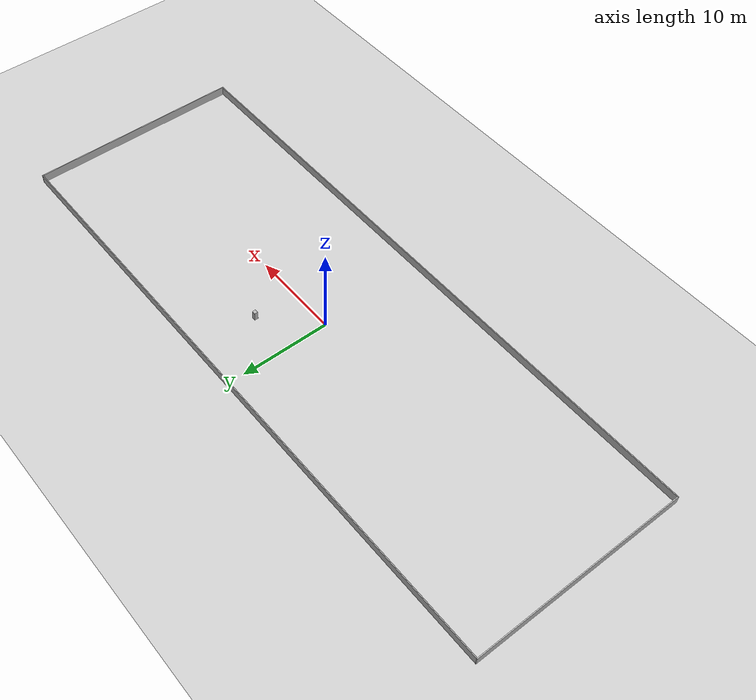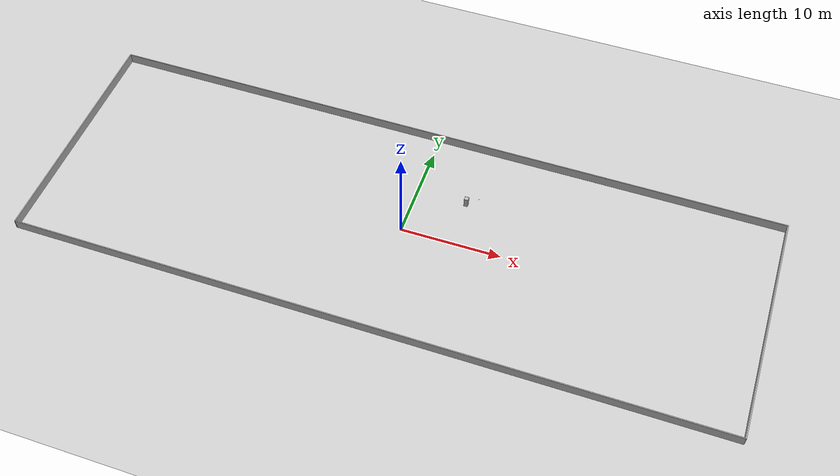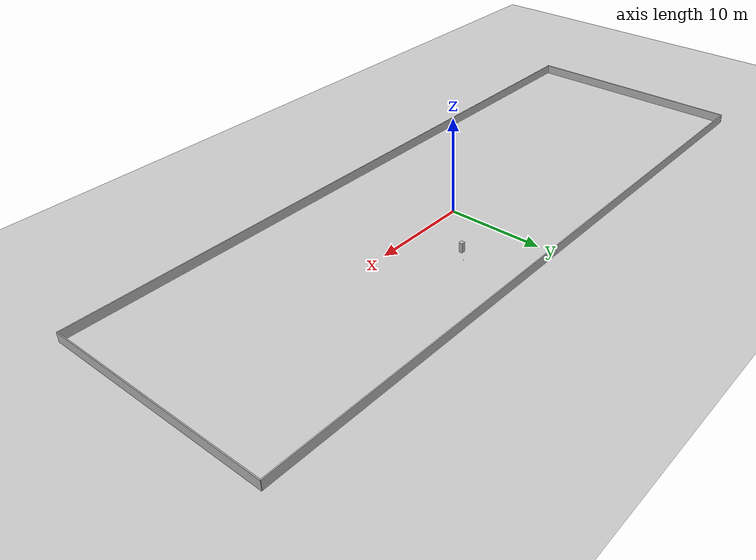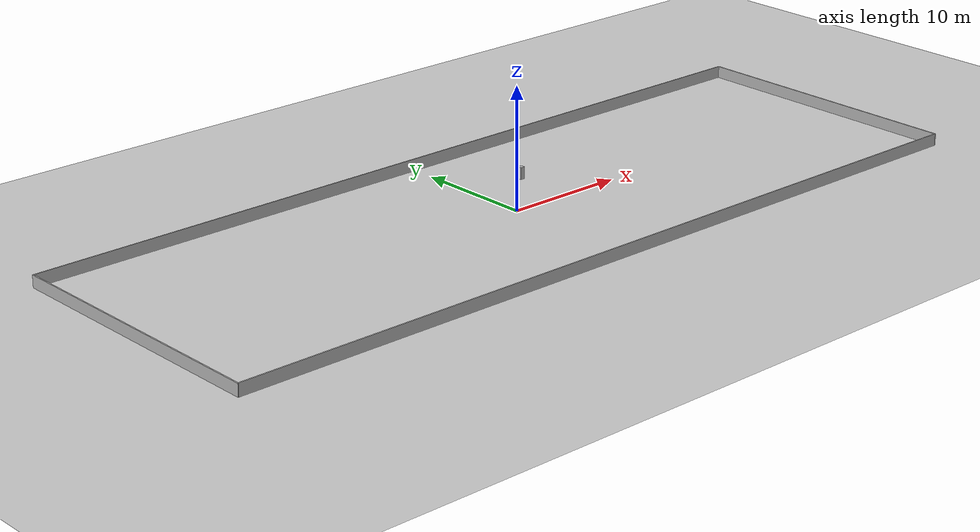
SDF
<?xml version='1.0' encoding='utf-8'?>
<sdf version="1.6">
  <world name="default">
    <light name="sun" type="directional">
      <cast_shadows>1</cast_shadows>
      <pose>0 0 10 0 -0 0</pose>
      <diffuse>0.8 0.8 0.8 1</diffuse>
      <specular>0.2 0.2 0.2 1</specular>
      <attenuation>
        <range>1000</range>
        <constant>0.9</constant>
        <linear>0.01</linear>
        <quadratic>0.001</quadratic>
      </attenuation>
      <direction>-0.5 0.1 -0.9</direction>
    </light>
    <physics type="ode">
      <gravity>0.000000 0.000000 -9.810000</gravity>
      <ode>
        <solver>
          <type>quick</type>
          <iters>60</iters>
          <sor>1.000000</sor>
        </solver>
        <constraints>
          <cfm>0.000000</cfm>
          <erp>0.200000</erp>
          <contact_max_correcting_vel>200</contact_max_correcting_vel>
          <contact_surface_layer>0.000000</contact_surface_layer>
        </constraints>
      </ode>
      <real_time_update_rate>1000.000000</real_time_update_rate>
      <max_step_size>0.001000</max_step_size>
      <real_time_factor>1.000000</real_time_factor>
      <max_contacts>20</max_contacts>
    </physics>
    <model name="ground_plane">
      <static>1</static>
      <link name="link">
        <collision name="collision">
          <geometry>
            <plane>
              <normal>0 0 1</normal>
              <size>100 100</size>
            </plane>
          </geometry>
          <surface>
            <friction>
              <ode>
                <mu>1</mu>
                <mu2>1</mu2>
              </ode>
            </friction>
            <bounce />
            <contact>
              <ode />
            </contact>
          </surface>
          <max_contacts>10</max_contacts>
        </collision>
        <visual name="visual">
          <cast_shadows>0</cast_shadows>
          <geometry>
            <plane>
              <normal>0 0 1</normal>
              <size>100 100</size>
            </plane>
          </geometry>
          <material>
            <script>
              <uri>file://media/materials/scripts/gazebo.material</uri>
              <name>Gazebo/Grey</name>
            </script>
          </material>
        </visual>
        <velocity_decay>
          <linear>0</linear>
          <angular>0</angular>
        </velocity_decay>
        <self_collide>0</self_collide>
        <kinematic>0</kinematic>
        <gravity>1</gravity>
      </link>
    </model>
    <plugin name="gazebo_link_attacher" filename="libgazebo_link_attacher.so" />
    <plugin name="gazebo_ros_state" filename="libgazebo_ros_state.so" />
    <model name="north">
      <static>true</static>
      <pose>0 12 0.5 0 0 0</pose>
      <link name="link">
        <collision name="collision">
          <geometry>
            <box>
              <size>70 0.1 1</size>
            </box>
          </geometry>
        </collision>
        <visual name="visual">
          <geometry>
            <box>
              <size>70 0.1 1</size>
            </box>
          </geometry>
        </visual>
      </link>
    </model>
    <model name="south">
      <static>true</static>
      <pose>0 -12 0.5 0 0 0</pose>
      <link name="link">
        <collision name="collision">
          <geometry>
            <box>
              <size>70 0.1 1</size>
            </box>
          </geometry>
        </collision>
        <visual name="visual">
          <geometry>
            <box>
              <size>70 0.1 1</size>
            </box>
          </geometry>
        </visual>
      </link>
    </model>
    <model name="east">
      <static>true</static>
      <pose>35 0 0.5 0 0 0</pose>
      <link name="link">
        <collision name="collision">
          <geometry>
            <box>
              <size>0.1 24.1 1</size>
            </box>
          </geometry>
        </collision>
        <visual name="visual">
          <geometry>
            <box>
              <size>0.1 24.1 1</size>
            </box>
          </geometry>
        </visual>
      </link>
    </model>
    <model name="west">
      <static>true</static>
      <pose>-35 0 0.5 0 0 0</pose>
      <link name="link">
        <collision name="collision">
          <geometry>
            <box>
              <size>0.1 24.1 1</size>
            </box>
          </geometry>
        </collision>
        <visual name="visual">
          <geometry>
            <box>
              <size>0.1 24.1 1</size>
            </box>
          </geometry>
        </visual>
      </link>
    </model>
    <model name="landmark">
      <static>true</static>
      <pose>5 5 0.5 0 0 0</pose>
      <link name="link">
        <collision name="collision">
          <geometry>
            <box>
              <size>0.4 0.4 1</size>
            </box>
          </geometry>
        </collision>
        <visual name="visual">
          <geometry>
            <box>
              <size>0.4 0.4 1</size>
            </box>
          </geometry>
        </visual>
      </link>
    </model>
    <model name="red_cube_4">
      <pose>6 6 0.035 0 0 0</pose>
      <link name="link">
        <inertial>
          <mass>0.1</mass>
        </inertial>
        <gravity>0</gravity>
        <collision name="collision">
          <laser_retro>130</laser_retro>
          <geometry>
            <box>
              <size>0.03 0.03 0.03</size>
            </box>
          </geometry>
          <surface>
            <contact>
              <collide_bitmask>0</collide_bitmask>
            </contact>
          </surface>
        </collision>
        <visual name="visual">
          <geometry>
            <box>
              <size>0.03 0.03 0.03</size>
            </box>
          </geometry>
          <material>
            <ambient>1 0 0 1</ambient>
            <diffuse>1 0 0 1</diffuse>
          </material>
        </visual>
      </link>
    </model>
  </world>
</sdf>
